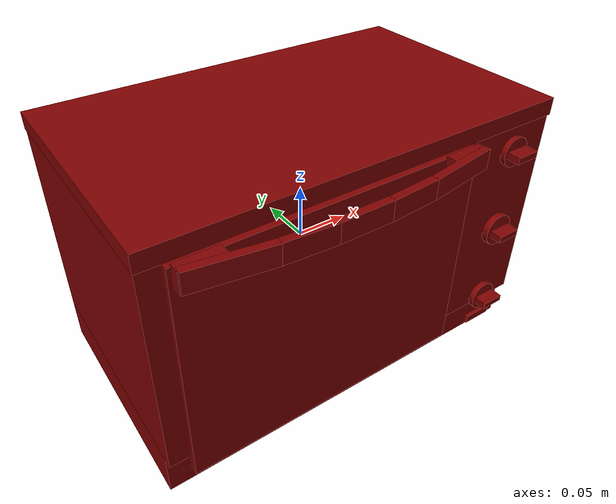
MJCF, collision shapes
<?xml version='1.0' encoding='UTF-8'?>
<mujoco model="model">
  <option timestep="0.002" gravity="0.0 0.0 -9.81"/>
  <compiler angle="radian"/>
  <asset>
    <mesh file="visuals/Body001.obj" name="Body001_vis"/>
    <mesh file="visuals/Button001.obj" name="Button001_vis"/>
    <mesh file="visuals/Door001.obj" name="Door001_vis"/>
    <mesh file="visuals/Door001_Clear.obj" name="Door001_Clear_vis"/>
    <mesh file="visuals/Knob001.obj" name="Knob001_vis"/>
    <mesh file="visuals/Knob002.obj" name="Knob002_vis"/>
    <mesh file="visuals/Knob003.obj" name="Knob003_vis"/>
    <mesh file="visuals/Shelf001.obj" name="Shelf001_vis"/>
    <texture file="visuals/T_BC001.png" name="Body001_material" type="2d"/>
    <material name="Body001_material" rgba="1 1 1 1.0" texture="Body001_material" shininess="0.141421377658844" specular="2"/>
    <texture file="visuals/T_BC001.png" name="Button001_material" type="2d"/>
    <material name="Button001_material" rgba="1 1 1 1.0" texture="Button001_material" shininess="0.141421377658844" specular="0.3103448502657381"/>
    <texture file="visuals/T_BC001.png" name="Door001_material" type="2d"/>
    <material name="Door001_material" rgba="1 1 1 1.0" texture="Door001_material" shininess="0.141421377658844" specular="2"/>
    <texture file="visuals/T_BC001.png" name="Door001_Clear_material" type="2d"/>
    <material name="Door001_Clear_material" rgba="1 1 1 0.8999999761581421" texture="Door001_Clear_material" shininess="0.141421377658844" specular="0.3103448502657381"/>
    <texture file="visuals/T_BC001.png" name="Knob001_material" type="2d"/>
    <material name="Knob001_material" rgba="1 1 1 1.0" texture="Knob001_material" shininess="0.141421377658844" specular="2"/>
    <texture file="visuals/T_BC001.png" name="Knob002_material" type="2d"/>
    <material name="Knob002_material" rgba="1 1 1 1.0" texture="Knob002_material" shininess="0.141421377658844" specular="2"/>
    <texture file="visuals/T_BC001.png" name="Knob003_material" type="2d"/>
    <material name="Knob003_material" rgba="1 1 1 1.0" texture="Knob003_material" shininess="0.141421377658844" specular="2"/>
    <texture file="visuals/T_BC001.png" name="Shelf001_material" type="2d"/>
    <material name="Shelf001_material" rgba="1 1 1 1.0" texture="Shelf001_material" shininess="0.141421377658844" specular="2"/>
  </asset>
  <default>
    <default class="visual">
      <geom conaffinity="0" contype="0" group="1" type="mesh"/>
    </default>
    <default class="collision">
      <geom group="0" rgba="0.5 0 0 0.5"/>
    </default>
    <default class="spawn">
      <geom group="0" rgba="1 1 1 0.5" contype="0" conaffinity="0"/>
      <site group="0" rgba="1 1 1 0.5"/>
    </default>
    <default class="region">
      <geom group="1" conaffinity="0" contype="0" rgba="0 1 0 0"/>
    </default>
  </default>
  <worldbody>
    <body>
      <body name="object">
        <geom mesh="Body001_vis" type="mesh" solimp="0.998 0.998 0.001" solref="0.001 1" friction="0.95 0.3 0.1" class="visual" material="Body001_material"/>
        <geom class="collision" type="box" pos="-1.9236005755374208e-05 0.012143446132540703 0.1172589659690857" size="0.189979687333107 0.11285300552845001 0.007724070455878973" quat="1.0 0.0 0.0 0.0" density="1000.0"/>
        <geom class="collision" type="box" pos="0.00036514142993837595 0.017388662323355675 -0.09918350726366043" size="0.18959537148475647 0.10760785639286041 0.025200389325618744" quat="1.0 0.0 0.0 0.0" density="1000.0"/>
        <geom class="collision" type="box" pos="-0.17692606151103973 -0.003136199666187167 0.038634635508060455" size="0.009380885399878025 0.077790267765522 0.00841467920690775" quat="1.0 0.0 0.0 0.0" density="1000.0"/>
        <geom class="collision" type="box" pos="0.1465904712677002 0.013229099102318287 0.015900038182735443" size="0.04340929538011551 0.1117674708366394 0.09982772171497345" quat="1.0 0.0 0.0 0.0" density="1000.0"/>
        <geom class="collision" type="box" pos="-0.028798863291740417 0.10427325963973999 0.015900038182735443" size="0.14574289321899414 0.020723646506667137 0.09982774406671524" quat="1.0 0.0 0.0 0.0" density="1000.0"/>
        <geom class="collision" type="box" pos="-0.17692603170871735 -0.0027878787368535995 -0.047884222120046616" size="0.00938091054558754 0.07890443503856659 0.014934169128537178" quat="1.0 0.0 0.0 0.0" density="1000.0"/>
        <geom class="collision" type="box" pos="-0.17692606151103973 -0.06882922351360321 0.06841085851192474" size="0.009380917996168137 0.012097611092031002 0.021756654605269432" quat="1.0 0.0 0.0 0.0" density="1000.0"/>
        <geom class="collision" type="box" pos="-0.17692603170871735 -0.0027878787368535995 -0.00318185449577868" size="0.009380914270877838 0.07890446484088898 0.014934172853827477" quat="1.0 0.0 0.0 0.0" density="1000.0"/>
        <geom class="collision" type="box" pos="0.10906939953565598 -0.0027878787368535995 -0.00318185449577868" size="0.009380917064845562 0.07890447974205017 0.014934174716472626" quat="1.0 0.0 0.0 0.0" density="1000.0"/>
        <geom class="collision" type="box" pos="0.10906936973333359 -0.06882922351360321 0.06841085851192474" size="0.009380923584103584 0.012097617611289024 0.021756667643785477" quat="1.0 0.0 0.0 0.0" density="1000.0"/>
        <geom class="collision" type="box" pos="0.10906939953565598 -0.0027878787368535995 -0.047884222120046616" size="0.00938092079013586 0.07890451699495316 0.014934178441762924" quat="1.0 0.0 0.0 0.0" density="1000.0"/>
        <geom class="collision" type="box" pos="0.10906936973333359 -0.003136199666187167 0.038634635508060455" size="0.009380928240716457 0.07779061049222946 0.008414700627326965" quat="1.0 0.0 0.0 0.0" density="1000.0"/>
        <geom class="collision" type="box" pos="-0.17997978627681732 0.013229099102318287 0.015900038182735443" size="0.009251195937395096 0.11176781356334686 0.09982805699110031" quat="1.0 0.0 0.0 0.0" density="1000.0"/>
        <body name="Button001">
          <joint axis="0.0 1.0 0.0" pos="0.1470629870891571 -0.10222431272268295 -0.09935057163238525" limited="true" name="Button001_joint" range="0.0 0.001" type="slide" damping="1" frictionloss="1" armature=".01" stiffness="0.05"/>
          <geom mesh="Button001_vis" type="mesh" solimp="0.998 0.998 0.001" solref="0.001 1" friction="0.95 0.3 0.1" class="visual" material="Button001_material"/>
          <geom class="collision" type="box" pos="0.14708825945854187 -0.10264670848846436 -0.09935586154460907" size="0.014874010346829891 0.001689672819338739 0.003955898806452751" quat="1.0 0.0 0.0 0.0" density="1000.0"/>
        </body>
        <body name="Door001">
          <joint axis="1.0 0.0 0.0" pos="-0.032838866114616394 -0.10050934553146362 -0.10733635723590851" limited="true" name="Door001_joint" range="0.0 1.5707963267948966" type="hinge" damping="1" frictionloss="1" armature=".01" stiffness="0.05"/>
          <geom mesh="Door001_vis" type="mesh" solimp="0.998 0.998 0.001" solref="0.001 1" friction="0.95 0.3 0.1" class="visual" material="Door001_material"/>
          <geom class="collision" type="box" pos="-0.03349321708083153 -0.09606602787971497 -0.0003504175692796707" size="0.13614827394485474 0.004798960406333208 0.10531576722860336" quat="1.0 0.0 0.0 0.0" density="1000.0"/>
          <geom class="collision" type="box" pos="-0.14877121150493622 -0.1055162325501442 0.09870054572820663" size="0.017443984746932983 0.00487617589533329 0.009048199281096458" quat="1.0 0.0 0.0 0.0" density="1000.0"/>
          <geom class="collision" type="box" pos="0.08442376554012299 -0.1055162325501442 0.09870054572820663" size="0.017443984746932983 0.00487617589533329 0.009048199281096458" quat="1.0 0.0 0.0 0.0" density="1000.0"/>
          <geom class="collision" type="box" pos="-0.1321568638086319 -0.11383698880672455 0.09870054572820663" size="0.0336148738861084 0.0033889063633978367 0.009048199281096458" quat="0.9969345927238464 0.0 -0.0 -0.07823959738016129" density="1000.0"/>
          <geom class="collision" type="box" pos="-0.07720388472080231 -0.12039728462696075 0.09870054572820663" size="0.022817878052592278 0.0033889063633978367 0.009048199281096458" quat="0.999382495880127 0.0 -0.0 -0.03513689711689949" density="1000.0"/>
          <geom class="collision" type="box" pos="-0.031199853867292404 -0.12188425660133362 0.09870054572820663" size="0.024095693603157997 0.0033995031844824553 0.009048199281096458" quat="1.0 0.0 0.0 0.0" density="1000.0"/>
          <geom class="collision" type="box" pos="0.014909140765666962 -0.12039728462696075 0.09870054572820663" size="0.022817878052592278 0.0033889063633978367 0.009048199281096458" quat="0.999382495880127 0.0 0.0 0.03513689711689949" density="1000.0"/>
          <geom class="collision" type="box" pos="0.06986211985349655 -0.11383698880672455 0.09870054572820663" size="0.0336148738861084 0.0033889063633978367 0.009048199281096458" quat="0.9969345927238464 0.0 0.0 0.07823959738016129" density="1000.0"/>
          <body name="Door001_Clear">
            <geom mesh="Door001_Clear_vis" type="mesh" solimp="0.998 0.998 0.001" solref="0.001 1" friction="0.95 0.3 0.1" class="visual" material="Door001_Clear_material"/>
            <geom class="collision" type="box" pos="-0.033869221806526184 -0.09694099426269531 0.007974427193403244" size="0.130821093916893 0.0012698654318228364 0.08143587410449982" quat="1.0 0.0 0.0 0.0" density="1000.0"/>
          </body>
        </body>
        <body name="Knob001">
          <joint axis="0.0 1.0 0.0" pos="0.14687401056289673 -0.10915648937225342 0.08847898244857788" limited="true" name="Knob001_joint" range="0.0 4.71238898038469" type="hinge" damping="0.05" armature="0.001"/>
          <geom mesh="Knob001_vis" type="mesh" solimp="0.998 0.998 0.001" solref="0.001 1" friction="0.95 0.3 0.1" class="visual" material="Knob001_material"/>
          <geom class="collision" type="cylinder" pos="0.14687401056289673 -0.103378064930439 0.08822216838598251" size="0.013667530380189419 0.002303937915712595" quat="0.7071068286895752 0.7071067690849304 0.0 0.0" density="1000.0"/>
          <geom class="collision" type="box" pos="0.14708825945854187 -0.11192124336957932 0.08858038485050201" size="0.01133323647081852 0.006229211110621691 0.002965589752420783" quat="1.0 0.0 0.0 0.0" density="1000.0"/>
        </body>
        <body name="Knob002">
          <joint axis="0.0 1.0 0.0" pos="0.14687460660934448 -0.10915648937225342 0.007712862454354763" limited="true" name="Knob002_joint" range="0.0 3.141592653589793" type="hinge" damping="0.05" armature="0.001"/>
          <geom mesh="Knob002_vis" type="mesh" solimp="0.998 0.998 0.001" solref="0.001 1" friction="0.95 0.3 0.1" class="visual" material="Knob002_material"/>
          <geom class="collision" type="cylinder" pos="0.14687401056289673 -0.10367054492235184 0.007839992642402649" size="0.015185631811618805 0.0029001834336668253" quat="0.7071068286895752 0.7071067690849304 0.0 0.0" density="1000.0"/>
          <geom class="collision" type="box" pos="0.14708825945854187 -0.11192124336957932 0.0077980500645935535" size="0.01133323647081852 0.006229211110621691 0.002965589752420783" quat="1.0 0.0 0.0 0.0" density="1000.0"/>
        </body>
        <body name="Knob003">
          <joint axis="0.0 1.0 0.0" pos="0.14687448740005493 -0.10915648937225342 -0.07244463264942169" limited="true" name="Knob003_joint" range="0.0 4.71238898038469" type="hinge" damping="0.05" armature="0.001"/>
          <geom mesh="Knob003_vis" type="mesh" solimp="0.998 0.998 0.001" solref="0.001 1" friction="0.95 0.3 0.1" class="visual" material="Knob003_material"/>
          <geom class="collision" type="cylinder" pos="0.14687401056289673 -0.10374654084444046 -0.07255961000919342" size="0.014301969669759274 0.0024843860883265734" quat="0.7071068286895752 0.7071067690849304 0.0 0.0" density="1000.0"/>
          <geom class="collision" type="box" pos="0.14708825945854187 -0.11192124336957932 -0.07245002686977386" size="0.01133323647081852 0.006229211110621691 0.002965589752420783" quat="1.0 0.0 0.0 0.0" density="1000.0"/>
        </body>
        <body name="Shelf001">
          <joint axis="0.0 -1.0 0.0" pos="-0.033960431814193726 -0.003999568521976471 -0.0347273051738739" limited="true" name="Shelf001_joint" range="0.0 0.13" type="slide" damping="1" frictionloss="1" armature=".01" stiffness="0.05"/>
          <geom mesh="Shelf001_vis" type="mesh" solimp="0.998 0.998 0.001" solref="0.001 1" friction="0.95 0.3 0.1" class="visual" material="Shelf001_material"/>
          <geom class="collision" type="box" pos="-0.03364736959338188 -0.003849916160106659 -0.03976474329829216" size="0.10801810026168823 0.07175811380147934 0.0022034181747585535" quat="1.0 0.0 0.0 0.0" density="1000.0"/>
          <geom class="collision" type="box" pos="0.09423527121543884 -0.003849916160106659 -0.029154816642403603" size="0.0076108407229185104 0.07175811380147934 0.0022034181747585535" quat="1.0 0.0 0.0 0.0" density="1000.0"/>
          <geom class="collision" type="box" pos="0.08006467670202255 -0.003849916160106659 -0.034531231969594955" size="0.009506208822131157 0.07175811380147934 0.0022034181747585535" quat="0.9429240226745605 0.0 -0.3330079913139343 0.0" density="1000.0"/>
          <geom class="collision" type="box" pos="-0.14844824373722076 -0.003849916160106659 -0.034531231969594955" size="0.009506208822131157 0.07175811380147934 0.0022034181747585535" quat="0.9429239630699158 0.0 0.3330080509185791 0.0" density="1000.0"/>
          <geom class="collision" type="box" pos="-0.16261883080005646 -0.003849916160106659 -0.029154816642403603" size="0.0076108407229185104 0.07175811380147934 0.0022034181747585535" quat="1.0 0.0 0.0 0.0" density="1000.0"/>
        </body>
        <geom class="region" name="reg_int" type="box" pos="-0.03431471064686775 -0.004683315753936768 0.016707073897123337" size="0.13647089526057243 0.08819631487131119 0.09040294215083122"/>
        <geom class="region" name="reg_main" type="box" pos="0.0 0.012066002003848553 0.0" size="0.1899999976158142 0.1129310205578804 0.125"/>
      </body>
    </body>
  </worldbody>
  <actuator>
    <motor name="Button001_joint_actuator" joint="Button001_joint" gear="0.5"/>
    <motor name="Door001_joint_actuator" joint="Door001_joint" gear="50"/>
    <motor name="Knob001_joint_actuator" joint="Knob001_joint" gear="50"/>
    <motor name="Knob002_joint_actuator" joint="Knob002_joint" gear="50"/>
    <motor name="Knob003_joint_actuator" joint="Knob003_joint" gear="50"/>
    <motor name="Shelf001_joint_actuator" joint="Shelf001_joint" gear="50"/>
  </actuator>
</mujoco>
